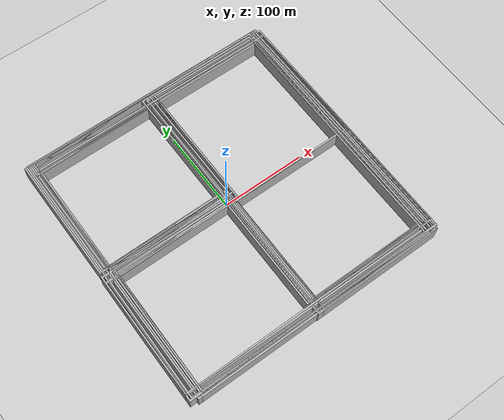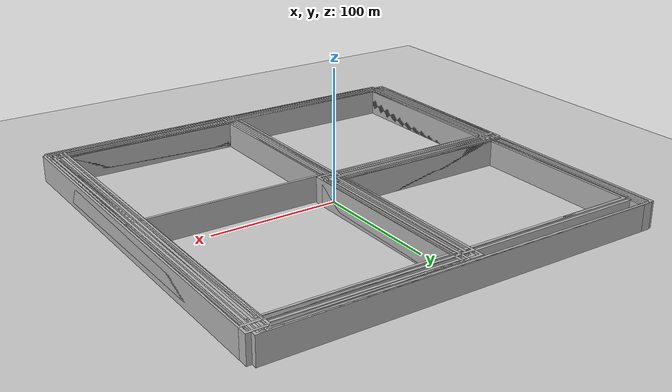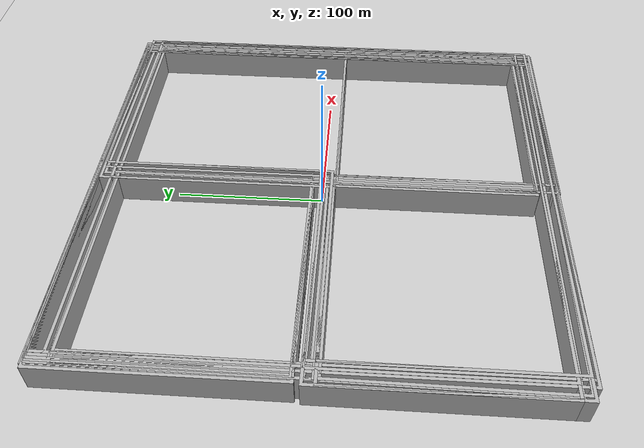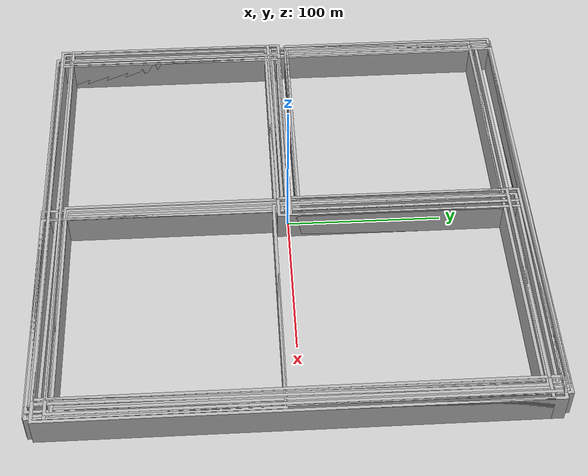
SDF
<?xml version="1.0" ?>
<sdf version='1.7'>
  <world name='ware_house'>
    <physics name='1ms' type='ignored'>
      <max_step_size>0.001</max_step_size>
      <real_time_factor>1</real_time_factor>
      <real_time_update_rate>1000</real_time_update_rate>
    </physics>
    <plugin filename="libignition-gazebo-clock-system.so"
            name="ignition::gazebo::systems::Clock">
        <use_sim_time>true</use_sim_time>
        <time_scaling_factor>1.0</time_scaling_factor>
    </plugin>
    <plugin
        filename="libignition-gazebo-physics-system.so"
        name="ignition::gazebo::systems::Physics">
    </plugin>
    <plugin
        filename="libignition-gazebo-user-commands-system.so"
        name="ignition::gazebo::systems::UserCommands">
    </plugin>
    <plugin
        filename="libignition-gazebo-scene-broadcaster-system.so"
        name="ignition::gazebo::systems::SceneBroadcaster">
    </plugin>

    <model name='ground_plane'>
      <static>true</static>
      <link name='link'>
        <collision name='collision'>
          <geometry>
            <plane>
              <normal>0 0 1</normal>
              <size>100 100</size>
            </plane>
          </geometry>
          <surface>
            <friction>
              <ode/>
            </friction>
            <bounce/>
            <contact/>
          </surface>
        </collision>
        <visual name='visual'>
          <geometry>
            <plane>
              <normal>0 0 1</normal>
              <size>100 100</size>
            </plane>
          </geometry>
          <material>
            <ambient>0.8 0.8 0.8 1</ambient>
            <diffuse>0.8 0.8 0.8 1</diffuse>
            <specular>0.8 0.8 0.8 1</specular>
          </material>
        </visual>
      </link>
    </model>

    <include>
      <uri>file:///home/yinchheanyun/trailobot_ws/install/trailobot_description/share/trailobot_description/models/GreyWall/model.sdf</uri>
      <name>grey_wall_right1</name>
      <pose>4.9814 -9.16828 0 0 -0 0</pose>
    </include>
    <include>
      <uri>file:///home/yinchheanyun/trailobot_ws/install/trailobot_description/share/trailobot_description/models/GreyWall/model.sdf</uri>
      <name>grey_wall_right2</name>
      <pose>-2.38654 -9.16739 0 0 -0 0</pose>
    </include>
    <include>
      <uri>file:///home/yinchheanyun/trailobot_ws/install/trailobot_description/share/trailobot_description/models/GreyWall/model.sdf</uri>
      <name>grey_wall_back1</name>
      <pose>8.7099 -5.28895 0.063592 0 0 -1.570796</pose>
    </include>
    <include>
      <uri>file:///home/yinchheanyun/trailobot_ws/install/trailobot_description/share/trailobot_description/models/GreyWall/model.sdf</uri>
      <name>grey_wall_back2</name>
      <pose>8.7099 2.2155 0.063592 0 0 -1.570796</pose>
    </include>
    <include>
      <uri>file:///home/yinchheanyun/trailobot_ws/install/trailobot_description/share/trailobot_description/models/GreyWall/model.sdf</uri>
      <name>grey_wall_left1</name>
      <pose>5.07045 6.05671 0 0 -0 0</pose>
    </include>
    <include>
      <uri>file:///home/yinchheanyun/trailobot_ws/install/trailobot_description/share/trailobot_description/models/GreyWall/model.sdf</uri>
      <name>grey_wall_left2</name>
      <pose>-2.36004 6.05671 0 0 -0 0</pose>
    </include>
    <include>
      <uri>file:///home/yinchheanyun/trailobot_ws/install/trailobot_description/share/trailobot_description/models/GreyWall/model.sdf</uri>
      <name>grey_wall_inside</name>
      <pose>3.99013 2.17383 0.063592 0 0 -1.570796</pose>
    </include>
    <include>
      <uri>file:///home/yinchheanyun/trailobot_ws/install/trailobot_description/share/trailobot_description/models/shelf/model.sdf</uri>
      <name>shelf1</name>
      <pose>6.48906 -8.46814 0 0 -0 3.14159</pose>
    </include>
    <include>
      <uri>file:///home/yinchheanyun/trailobot_ws/install/trailobot_description/share/trailobot_description/models/shelf/model.sdf</uri>
      <name>shelf2</name>
      <pose>1.93725 -8.43145 0 0 -0 3.14159</pose>
    </include>
    <include>
      <uri>file:///home/yinchheanyun/trailobot_ws/install/trailobot_description/share/trailobot_description/models/GreyWall/model.sdf</uri>
      <name>grey_wall_inside2</name>
      <pose>4.90519 -4.70048 0 0 -0 0</pose>
    </include>
    <include>
      <uri>file:///home/yinchheanyun/trailobot_ws/install/trailobot_description/share/trailobot_description/models/pallet_box_mobile/model.sdf</uri>
      <name>euro_pallet1</name>
      <pose>3.0 5.25 0 0 -0 0</pose>
    </include>
    <include>
      <uri>file:///home/yinchheanyun/trailobot_ws/install/trailobot_description/share/trailobot_description/models/pallet_box_mobile/model.sdf</uri>
      <name>euro_pallet2</name>
      <pose>1.0 5.25 0 0 -0 0</pose>
    </include>
    <include>
      <uri>file:///home/yinchheanyun/trailobot_ws/install/trailobot_description/share/trailobot_description/models/pallet_box_mobile/model.sdf</uri>
      <name>euro_pallet3</name>
      <pose>-1.0 5.25 0 0 -0 0</pose>
    </include>
    <include>
      <uri>file:///home/yinchheanyun/trailobot_ws/install/trailobot_description/share/trailobot_description/models/pallet_box_mobile/model.sdf</uri>
      <name>euro_pallet4</name>
      <pose>-3.0 5.25 0 0 -0 0</pose>
    </include>
    <include>
      <uri>file:///home/yinchheanyun/trailobot_ws/install/trailobot_description/share/trailobot_description/models/pallet_box_mobile/model.sdf</uri>
      <name>euro_pallet5</name>
      <pose>-5.0 5.25 0 0 0 0.0</pose>
    </include>
    <include>
      <uri>file:///home/yinchheanyun/trailobot_ws/install/trailobot_description/share/trailobot_description/models/aws_robomaker_warehouse_ClutteringA_01/model.sdf</uri>
      <name>cluttering</name>
      <pose>-3.0 0.0 0 0 0 -1.57914</pose>
    </include>

    <include>
      <uri>file:///home/yinchheanyun/trailobot_ws/install/trailobot_description/share/trailobot_description/models/GreyWall/model.sdf</uri>
      <name>grey_wall_front</name>
      <pose>-6.12385 2.22676 0.063592 0 0 -1.570796</pose>
    </include>
    <include>
      <uri>file:///home/yinchheanyun/trailobot_ws/install/trailobot_description/share/trailobot_description/models/GreyWall/model.sdf</uri>
      <name>grey_wall_front_inside1</name>
      <pose>-1.93065 -5.32933 0.026264 0 0 -1.57914</pose>
    </include>
    <include>
      <uri>file:///home/yinchheanyun/trailobot_ws/install/trailobot_description/share/trailobot_description/models/GreyWall/model.sdf</uri>
      <name>grey_wall_front_inside2</name>
      <pose>-6.11323 -5.32044 0.063592 0 0 -1.570796</pose>
    </include>

    <light name='sun' type='directional'>
      <pose>0 0 10 0 -0 0</pose>
      <cast_shadows>true</cast_shadows>
      <intensity>1</intensity>
      <direction>-0.5 0.1 -0.9</direction>
      <diffuse>0.8 0.8 0.8 1</diffuse>
      <specular>0.2 0.2 0.2 1</specular>
      <attenuation>
        <range>1000</range>
        <linear>0.01</linear>
        <constant>0.90000000000000002</constant>
        <quadratic>0.001</quadratic>
      </attenuation>
      <spot>
        <inner_angle>0</inner_angle>
        <outer_angle>0</outer_angle>
        <falloff>0</falloff>
      </spot>
    </light>
    <gui fullscreen='0'>
      <camera name='user_camera'>
        <pose>-3.90827 -4.65526 4.77216 0 0.623643 0.728194</pose>
        <view_controller>orbit</view_controller>
        <projection_type>perspective</projection_type>
      </camera>
    </gui>
  </world>
</sdf>

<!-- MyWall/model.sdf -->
<sdf version='1.7'>
  <model name='my_wall'>
    <pose>0 0 0 0 0 0</pose>
    <self_collide>false</self_collide>

    <!-- Base link -->
    <link name='wall_base'>
      <pose>0 0 0 0 0 0</pose>

      <!-- Collision: simple box -->
      <collision name='wall_collision'>
        <pose>0 0 0.5 0 0 0</pose>
        <geometry>
          <!-- Adjust size to match your wall -->
          <box>
            <size>2 0.2 1</size> <!-- length x thickness x height -->
          </box>
        </geometry>
      </collision>

      <!-- Visual: Blender .dae mesh -->
      <visual name='wall_visual'>
        <pose>0 0 0 0 0 0</pose>
        <geometry>
          <mesh>
            <scale>1 1 1</scale>
            <uri>meshes/demo_block.dae</uri>
          </mesh>
        </geometry>
      </visual>
    </link>

    <!-- Make it static (does not move) -->
    <static>1</static>
  </model>
</sdf>
